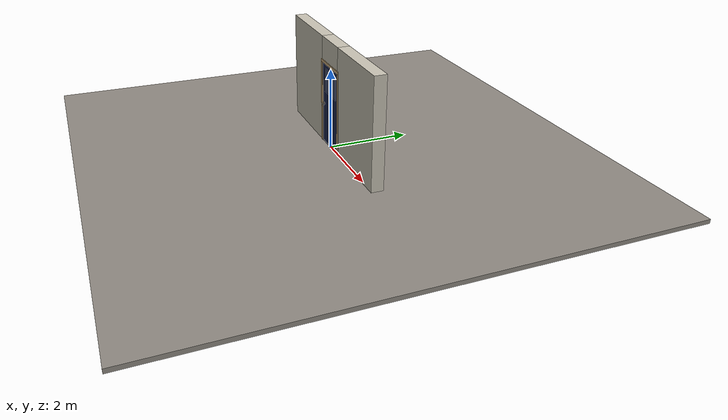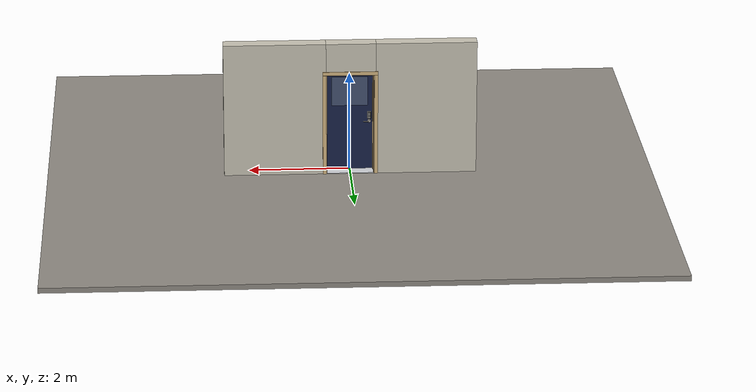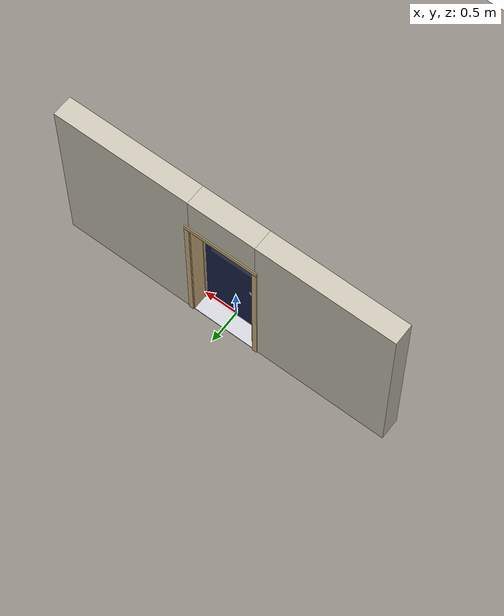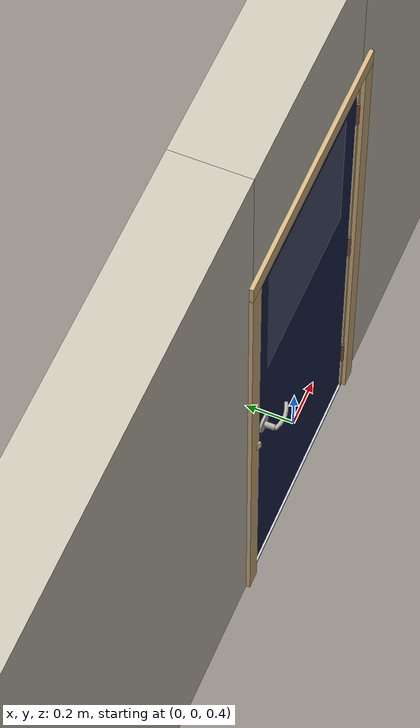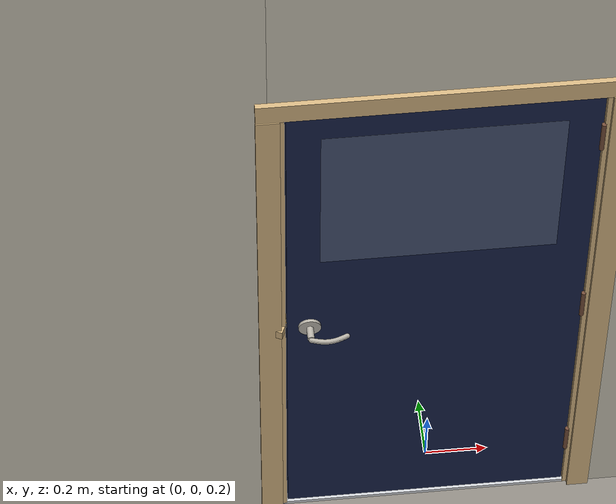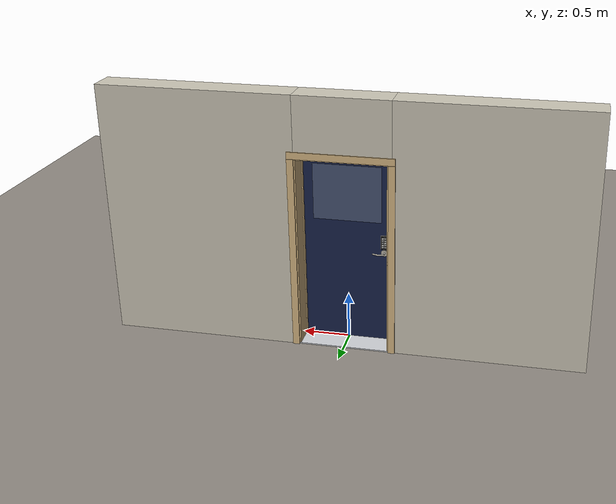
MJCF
<?xml version="1.0" ?>
<mujoco model="db0878_swing_single_full">
  <compiler angle="radian" meshdir="../../hardware" texturedir="../../textures" autolimits="true" inertiafromgeom="false"/>
  <option timestep="0.002" integrator="implicitfast" cone="elliptic" impratio="10" noslip_iterations="3">
    <flag multiccd="enable"/>
  </option>
  <size memory="16M"/>
  <default>
    <geom condim="4" solref="0.005 1" solimp="0.95 0.99 0.001"/>
    <joint solreflimit="0.005 1" solimplimit="0.95 0.99 0.001"/>
    <tendon solreflimit="0.005 1"/>
    <equality solref="0.002 1"/>
  </default>
  <visual>
    <headlight ambient="0.4 0.4 0.4" diffuse="0.7 0.7 0.7" specular="0.2 0.2 0.2"/>
    <quality shadowsize="4096"/>
    <map znear="0.01" zfar="60"/>
  </visual>
  <asset>
    <mesh name="hinge_e22b26c0c1" file="hinge_e22b26c0c1.obj"/>
    <mesh name="hinge_jamb_e1d088f8dc" file="hinge_jamb_e1d088f8dc.obj"/>
    <mesh name="keypad_body_3b2d063948" file="keypad_body_3b2d063948.obj"/>
    <mesh name="lever_a61139b160" file="lever_a61139b160.obj"/>
    <material name="mat_floor" rgba="0.55 0.53 0.5 1" specular="0.2" shininess="0.15" reflectance="0"/>
    <material name="mat_wall" rgba="0.78 0.76 0.7 1" specular="0.2" shininess="0.1" reflectance="0"/>
    <material name="mat_leaf" rgba="0.09 0.13 0.28 1" specular="0.2" shininess="0.62" reflectance="0"/>
    <material name="mat_glass" rgba="0.85 0.92 0.95 0.25" specular="0.2" shininess="0.95" reflectance="0.1"/>
    <material name="mat_hinge" rgba="0.45 0.3 0.22 1" specular="0.5" shininess="0.1" reflectance="0.2"/>
    <material name="mat_op_nickel_satin" rgba="0.72 0.7 0.66 1" specular="0.8" shininess="0.65" reflectance="0.4"/>
    <material name="mat_trim" rgba="0.85 0.66 0.3 1" specular="0.8" shininess="0.75" reflectance="0.4"/>
    <material name="mat_keypad" rgba="0.05 0.05 0.05 1" specular="0.38" shininess="0.3" reflectance="0.12"/>
    <material name="mat_key" rgba="0.85 0.85 0.82 1" specular="0.2" shininess="0.5" reflectance="0"/>
    <material name="mat_bolt" rgba="0.85 0.66 0.3 1" specular="0.8" shininess="0.75" reflectance="0.4"/>
    <material name="mat_frame" rgba="0.82 0.7 0.5 1" specular="0.2" shininess="0.45" reflectance="0"/>
    <material name="mat_seal" rgba="0.1 0.1 0.1 1" specular="0.2" shininess="0.1" reflectance="0"/>
    <material name="mat_threshold" rgba="0.8 0.81 0.83 1" specular="0.8" shininess="0.6" reflectance="0.4"/>
    <material name="mat_drip" rgba="0.8 0.81 0.83 1" specular="0.8" shininess="0.6" reflectance="0.4"/>
    <texture name="skybox" type="skybox" builtin="gradient" rgb1="0.6 0.7 0.85" rgb2="0.9 0.92 0.95" width="256" height="256"/>
  </asset>
  <worldbody>
    <light name="sun" pos="1.5 -2.5 4" dir="-0.3 0.5 -0.8" directional="true" diffuse="0.8 0.8 0.8" specular="0.3 0.3 0.3" castshadow="true"/>
    <light name="fill" pos="-1.5 2.5 3" dir="0.3 -0.5 -0.7" directional="true" diffuse="0.35 0.35 0.4" castshadow="false"/>
    <camera name="robot_view" pos="0 -2.421187 1.734312" xyaxes="1 0 0 0 0.26963 0.962964" fovy="52"/>
    <camera name="far_view" pos="0 2.663187 1.734312" xyaxes="-1 0 0 0 -0.26963 0.962964" fovy="52"/>
    <camera name="iso" pos="-1.932062 -2.014438 2.141063" xyaxes="0.741536 -0.670913 0 0.242917 0.268487 0.932151" fovy="46"/>
    <camera name="detail_handle" pos="-0.1169 -0.877 1.296" xyaxes="0.97561 0.219512 0 -0.070934 0.315262 0.94635" fovy="38"/>
    <geom name="floor" type="box" size="6 6 0.05" pos="0 0 -0.05" material="mat_floor" group="0" contype="1" conaffinity="1" friction="0.8 0.005 0.0001" density="2400"/>
    <geom name="wall_left" type="box" size="0.99525 0.15 1.35" pos="-1.50475 0.121 1.35" material="mat_wall" group="0" contype="1" conaffinity="1" friction="0.6 0.005 0.0001" density="800"/>
    <geom name="wall_right" type="box" size="1.01025 0.15 1.35" pos="1.48975 0.121 1.35" material="mat_wall" group="0" contype="1" conaffinity="1" friction="0.6 0.005 0.0001" density="800"/>
    <geom name="wall_header" type="box" size="0.4945 0.15 0.303" pos="-0.015 0.121 2.397" material="mat_wall" group="0" contype="1" conaffinity="1" friction="0.6 0.005 0.0001" density="800"/>
    <geom name="hinge_0_jamb" type="mesh" mesh="hinge_jamb_e1d088f8dc" pos="0.4575 -0.029 0.267" quat="0 0 1 0" material="mat_hinge" group="1" contype="0" conaffinity="0" density="7850"/>
    <geom name="hinge_1_jamb" type="mesh" mesh="hinge_jamb_e1d088f8dc" pos="0.4575 -0.029 1.029" quat="0 0 1 0" material="mat_hinge" group="1" contype="0" conaffinity="0" density="7850"/>
    <geom name="hinge_2_jamb" type="mesh" mesh="hinge_jamb_e1d088f8dc" pos="0.4575 -0.029 1.861" quat="0 0 1 0" material="mat_hinge" group="1" contype="0" conaffinity="0" density="7850"/>
    <geom name="jamb_hinge" type="box" size="0.0095 0.15 1.0225" pos="0.47 0.121 1.0225" material="mat_frame" group="0" contype="1" conaffinity="1" friction="0.6 0.005 0.0001" density="400"/>
    <geom name="strike_1016_wall_n" type="box" size="0.0245 0.131575 0.0167" pos="-0.485 0.139425 1.016" material="mat_frame" group="0" contype="1" conaffinity="1" friction="0.6 0.005 0.0001" density="400"/>
    <geom name="strike_1016_wall_p" type="box" size="0.0245 0.008 0.0167" pos="-0.485 -0.01585 1.016" material="mat_frame" group="0" contype="1" conaffinity="1" friction="0.6 0.005 0.0001" density="400"/>
    <geom name="strike_1016_ramp" type="box" size="0.0245 0.01649 0.0167" pos="-0.489636 -0.028673 1.016" quat="0.977148 0 0 -0.212558" material="mat_frame" group="0" contype="1" conaffinity="1" friction="0.12 0.005 0.0001" density="400"/>
    <geom name="strike_1016_back" type="box" size="0.01615 0.00785 0.0167" pos="-0.49335 0 1.016" material="mat_frame" group="0" contype="1" conaffinity="1" friction="0.6 0.005 0.0001" density="400"/>
    <geom name="jamb_strike_0" type="box" size="0.0245 0.15 0.49965" pos="-0.485 0.121 0.49965" material="mat_frame" group="0" contype="1" conaffinity="1" friction="0.6 0.005 0.0001" density="400"/>
    <geom name="jamb_strike_1" type="box" size="0.0245 0.15 0.50615" pos="-0.485 0.121 1.53885" material="mat_frame" group="0" contype="1" conaffinity="1" friction="0.6 0.005 0.0001" density="400"/>
    <geom name="jamb_head" type="box" size="0.4945 0.15 0.0095" pos="-0.015 0.121 2.0545" material="mat_frame" group="0" contype="1" conaffinity="1" friction="0.6 0.005 0.0001" density="400"/>
    <geom name="head_stud" type="box" size="0.4945 0.15 0.015" pos="-0.015 0.121 2.079" material="mat_wall" group="0" contype="1" conaffinity="1" friction="0.6 0.005 0.0001" density="500"/>
    <geom name="stop_hinge" type="box" size="0.0055 0.016 1.0225" pos="0.455 0.0385 1.0225" material="mat_frame" group="0" contype="1" conaffinity="1" friction="0.6 0.005 0.0001" density="400"/>
    <geom name="stop_strike" type="box" size="0.0055 0.016 1.0225" pos="-0.455 0.0385 1.0225" material="mat_frame" group="0" contype="1" conaffinity="1" friction="0.6 0.005 0.0001" density="400"/>
    <geom name="stop_head" type="box" size="0.4605 0.016 0.0055" pos="0 0.0385 2.0395" material="mat_frame" group="0" contype="1" conaffinity="1" friction="0.6 0.005 0.0001" density="400"/>
    <geom name="seal_hinge" type="box" size="0.004 0.0015 1.0225" pos="0.4575 0.0235 1.0225" material="mat_seal" group="1" contype="0" conaffinity="0" density="1100"/>
    <geom name="seal_strike" type="box" size="0.004 0.0015 1.0225" pos="-0.4575 0.0235 1.0225" material="mat_seal" group="1" contype="0" conaffinity="0" density="1100"/>
    <geom name="seal_head" type="box" size="0.4405 0.0015 0.008" pos="0 0.0235 2.033" material="mat_seal" group="1" contype="0" conaffinity="0" density="1100"/>
    <geom name="casing_l_n" type="box" size="0.035 0.008 1.032" pos="-0.5095 -0.037 1.0225" material="mat_frame" group="2" contype="0" conaffinity="0" density="400"/>
    <geom name="casing_r_n" type="box" size="0.035 0.008 1.032" pos="0.5095 -0.037 1.0225" material="mat_frame" group="2" contype="0" conaffinity="0" density="400"/>
    <geom name="casing_h_n" type="box" size="0.5445 0.008 0.035" pos="0 -0.037 2.094" material="mat_frame" group="2" contype="0" conaffinity="0" density="400"/>
    <geom name="casing_l_p" type="box" size="0.035 0.008 1.032" pos="-0.5095 0.279 1.0225" material="mat_frame" group="2" contype="0" conaffinity="0" density="400"/>
    <geom name="casing_r_p" type="box" size="0.035 0.008 1.032" pos="0.5095 0.279 1.0225" material="mat_frame" group="2" contype="0" conaffinity="0" density="400"/>
    <geom name="casing_h_p" type="box" size="0.5445 0.008 0.035" pos="0 0.279 2.094" material="mat_frame" group="2" contype="0" conaffinity="0" density="400"/>
    <geom name="threshold" type="box" size="0.4795 0.15 0.0065" pos="0 0.121 0.0065" material="mat_threshold" group="0" contype="1" conaffinity="1" friction="0.5 0.005 0.0001" density="2700"/>
    <geom name="weather_drip_cap" type="box" size="0.5105 0.03 0.008" pos="0 0.03 2.09" material="mat_drip" group="2" contype="0" conaffinity="0" density="2700"/>
    <geom name="weather_drip_cap_bracket" type="box" size="0.15315 0.015 0.005" pos="0 -0.0145 2.09" material="mat_drip" group="2" contype="0" conaffinity="0" density="7850"/>
    <site name="approach_point" pos="0 -1.5 0" quat="1 0 0 0" size="0.05" rgba="0.2 0.9 0.2 0.5" group="4"/>
    <site name="goal_point" pos="0 1.5 0" quat="1 0 0 0" size="0.05" rgba="0.2 0.9 0.2 0.5" group="4"/>
    <site name="door_plane_center" pos="0 0 1.0225" quat="1 0 0 0" size="0.02" rgba="0.2 0.9 0.2 0.5" group="4"/>
    <body name="leaf" pos="0.4605 0 0">
      <inertial pos="-0.452325 0.000023 1.032483" mass="27.888101" quat="0.501313 0.497759 -0.502156 0.498758" diaginertia="2.12516692 9.41904057 11.53366141"/>
      <joint name="leaf_hinge" type="hinge" axis="0 0 1" pos="-0.003 -0.029 0" limited="true" range="0 1.570796" solreflimit="0.02 1" damping="0.30611" frictionloss="2.621469" armature="0.02"/>
      <geom name="leaf_slab" type="box" size="0.457 0.022 1.012" pos="-0.46 0 1.029" material="mat_leaf" group="0" contype="1" conaffinity="1" friction="0.4 0.005 0.0001" density="1"/>
      <geom name="leaf_glass_0" type="box" size="0.35646 0.0228 0.297528" pos="-0.46 0 1.642272" material="mat_glass" group="1" contype="0" conaffinity="0" density="1"/>
      <geom name="hinge_0" type="mesh" mesh="hinge_e22b26c0c1" pos="-0.003 -0.029 0.267" quat="0 0 1 0" material="mat_hinge" group="1" contype="0" conaffinity="0" density="7850"/>
      <geom name="hinge_1" type="mesh" mesh="hinge_e22b26c0c1" pos="-0.003 -0.029 1.029" quat="0 0 1 0" material="mat_hinge" group="1" contype="0" conaffinity="0" density="7850"/>
      <geom name="hinge_2" type="mesh" mesh="hinge_e22b26c0c1" pos="-0.003 -0.029 1.861" quat="0 0 1 0" material="mat_hinge" group="1" contype="0" conaffinity="0" density="7850"/>
      <geom name="leaf_keypad_body" type="mesh" mesh="keypad_body_3b2d063948" pos="-0.847 0.022 1.136" quat="0 0 0.707107 0.707107" material="mat_keypad" group="0" contype="1" conaffinity="1" friction="0.6 0.005 0.0001" density="2000"/>
      <geom name="leaf_latch_bolt_faceplate" type="box" size="0.0006 0.01235 0.0267" pos="-0.9164 0 1.016" material="mat_bolt" group="1" contype="0" conaffinity="0" density="8500"/>
      <site name="leaf_edge_mid" pos="-0.917 0 1.012" quat="1 0 0 0" size="0.02" rgba="0.2 0.9 0.2 0.5" group="4"/>
      <body name="leaf_handle" pos="-0.847 0 1.016">
        <inertial pos="0.022132 -0.050687 0" mass="0.463269" quat="0.312008 0 0 0.950079" diaginertia="0.000227859 0.000847742 0.000992066"/>
        <joint name="leaf_handle_hinge" type="hinge" axis="0 1 0" limited="true" range="0 0.87" damping="0.208392" frictionloss="0.052" stiffness="1" springref="-0.35" armature="0.01"/>
        <geom name="leaf_handle_spindle" type="cylinder" size="0.006 0.03" pos="0 0 0" quat="0.707107 -0.707107 0 0" material="mat_op_nickel_satin" group="1" contype="0" conaffinity="0" density="7850"/>
        <geom name="leaf_handle_lever_n" type="mesh" mesh="lever_a61139b160" pos="0 -0.022 0" quat="0 0 -0.707107 0.707107" material="mat_op_nickel_satin" group="1" contype="0" conaffinity="0" density="3000"/>
        <geom name="leaf_handle_lever_col_n" type="capsule" size="0.008 0.048" pos="0.056 -0.077 0" quat="0.707107 0 0.707107 0" material="mat_op_nickel_satin" group="3" contype="1" conaffinity="1" rgba="0.8 0.3 0.3 0.25" friction="0.7 0.01 0.0001" density="3000"/>
        <geom name="leaf_handle_hub_col_n" type="cylinder" size="0.012 0.022" pos="0 -0.052 0" quat="0.707107 -0.707107 0 0" material="mat_op_nickel_satin" group="3" contype="1" conaffinity="1" rgba="0.8 0.3 0.3 0.25" friction="0.6 0.005 0.0001" density="3000"/>
        <site name="leaf_handle_grip_n" pos="0.0896 -0.077 0" quat="1 0 0 0" size="0.012" rgba="0.2 0.9 0.2 0.5" group="4"/>
      </body>
      <body name="leaf_keypad_key_1" pos="-0.834 0.042 1.184">
        <inertial pos="0 0.0015 0" mass="0.001008" quat="0 0 0.707107 0.707107" diaginertia="0.000000017 0.000000034 0.00000005"/>
        <joint name="leaf_keypad_key_1_slide" type="slide" axis="0 -1 0" limited="true" range="0 0.0015" damping="14" frictionloss="0.05" stiffness="1000" springref="-0.0015" armature="0.1"/>
        <geom name="leaf_keypad_key_1_geom" type="box" size="0.01 0.0015 0.007" pos="0 0.0015 0" material="mat_key" group="0" contype="1" conaffinity="1" friction="0.6 0.005 0.0001" density="1200"/>
        <site name="leaf_keypad_key_1_press" pos="0 0.005 0" quat="1 0 0 0" size="0.008" rgba="0.2 0.9 0.2 0.5" group="4"/>
      </body>
      <body name="leaf_keypad_key_2" pos="-0.86 0.042 1.184">
        <inertial pos="0 0.0015 0" mass="0.001008" quat="0 0 0.707107 0.707107" diaginertia="0.000000017 0.000000034 0.00000005"/>
        <joint name="leaf_keypad_key_2_slide" type="slide" axis="0 -1 0" limited="true" range="0 0.0015" damping="14" frictionloss="0.05" stiffness="1000" springref="-0.0015" armature="0.1"/>
        <geom name="leaf_keypad_key_2_geom" type="box" size="0.01 0.0015 0.007" pos="0 0.0015 0" material="mat_key" group="0" contype="1" conaffinity="1" friction="0.6 0.005 0.0001" density="1200"/>
        <site name="leaf_keypad_key_2_press" pos="0 0.005 0" quat="1 0 0 0" size="0.008" rgba="0.2 0.9 0.2 0.5" group="4"/>
      </body>
      <body name="leaf_keypad_key_3" pos="-0.834 0.042 1.16">
        <inertial pos="0 0.0015 0" mass="0.001008" quat="0 0 0.707107 0.707107" diaginertia="0.000000017 0.000000034 0.00000005"/>
        <joint name="leaf_keypad_key_3_slide" type="slide" axis="0 -1 0" limited="true" range="0 0.0015" damping="14" frictionloss="0.05" stiffness="1000" springref="-0.0015" armature="0.1"/>
        <geom name="leaf_keypad_key_3_geom" type="box" size="0.01 0.0015 0.007" pos="0 0.0015 0" material="mat_key" group="0" contype="1" conaffinity="1" friction="0.6 0.005 0.0001" density="1200"/>
        <site name="leaf_keypad_key_3_press" pos="0 0.005 0" quat="1 0 0 0" size="0.008" rgba="0.2 0.9 0.2 0.5" group="4"/>
      </body>
      <body name="leaf_keypad_key_4" pos="-0.86 0.042 1.16">
        <inertial pos="0 0.0015 0" mass="0.001008" quat="0 0 0.707107 0.707107" diaginertia="0.000000017 0.000000034 0.00000005"/>
        <joint name="leaf_keypad_key_4_slide" type="slide" axis="0 -1 0" limited="true" range="0 0.0015" damping="14" frictionloss="0.05" stiffness="1000" springref="-0.0015" armature="0.1"/>
        <geom name="leaf_keypad_key_4_geom" type="box" size="0.01 0.0015 0.007" pos="0 0.0015 0" material="mat_key" group="0" contype="1" conaffinity="1" friction="0.6 0.005 0.0001" density="1200"/>
        <site name="leaf_keypad_key_4_press" pos="0 0.005 0" quat="1 0 0 0" size="0.008" rgba="0.2 0.9 0.2 0.5" group="4"/>
      </body>
      <body name="leaf_keypad_key_5" pos="-0.834 0.042 1.136">
        <inertial pos="0 0.0015 0" mass="0.001008" quat="0 0 0.707107 0.707107" diaginertia="0.000000017 0.000000034 0.00000005"/>
        <joint name="leaf_keypad_key_5_slide" type="slide" axis="0 -1 0" limited="true" range="0 0.0015" damping="14" frictionloss="0.05" stiffness="1000" springref="-0.0015" armature="0.1"/>
        <geom name="leaf_keypad_key_5_geom" type="box" size="0.01 0.0015 0.007" pos="0 0.0015 0" material="mat_key" group="0" contype="1" conaffinity="1" friction="0.6 0.005 0.0001" density="1200"/>
        <site name="leaf_keypad_key_5_press" pos="0 0.005 0" quat="1 0 0 0" size="0.008" rgba="0.2 0.9 0.2 0.5" group="4"/>
      </body>
      <body name="leaf_keypad_key_6" pos="-0.86 0.042 1.136">
        <inertial pos="0 0.0015 0" mass="0.001008" quat="0 0 0.707107 0.707107" diaginertia="0.000000017 0.000000034 0.00000005"/>
        <joint name="leaf_keypad_key_6_slide" type="slide" axis="0 -1 0" limited="true" range="0 0.0015" damping="14" frictionloss="0.05" stiffness="1000" springref="-0.0015" armature="0.1"/>
        <geom name="leaf_keypad_key_6_geom" type="box" size="0.01 0.0015 0.007" pos="0 0.0015 0" material="mat_key" group="0" contype="1" conaffinity="1" friction="0.6 0.005 0.0001" density="1200"/>
        <site name="leaf_keypad_key_6_press" pos="0 0.005 0" quat="1 0 0 0" size="0.008" rgba="0.2 0.9 0.2 0.5" group="4"/>
      </body>
      <body name="leaf_keypad_key_7" pos="-0.834 0.042 1.112">
        <inertial pos="0 0.0015 0" mass="0.001008" quat="0 0 0.707107 0.707107" diaginertia="0.000000017 0.000000034 0.00000005"/>
        <joint name="leaf_keypad_key_7_slide" type="slide" axis="0 -1 0" limited="true" range="0 0.0015" damping="14" frictionloss="0.05" stiffness="1000" springref="-0.0015" armature="0.1"/>
        <geom name="leaf_keypad_key_7_geom" type="box" size="0.01 0.0015 0.007" pos="0 0.0015 0" material="mat_key" group="0" contype="1" conaffinity="1" friction="0.6 0.005 0.0001" density="1200"/>
        <site name="leaf_keypad_key_7_press" pos="0 0.005 0" quat="1 0 0 0" size="0.008" rgba="0.2 0.9 0.2 0.5" group="4"/>
      </body>
      <body name="leaf_keypad_key_8" pos="-0.86 0.042 1.112">
        <inertial pos="0 0.0015 0" mass="0.001008" quat="0 0 0.707107 0.707107" diaginertia="0.000000017 0.000000034 0.00000005"/>
        <joint name="leaf_keypad_key_8_slide" type="slide" axis="0 -1 0" limited="true" range="0 0.0015" damping="14" frictionloss="0.05" stiffness="1000" springref="-0.0015" armature="0.1"/>
        <geom name="leaf_keypad_key_8_geom" type="box" size="0.01 0.0015 0.007" pos="0 0.0015 0" material="mat_key" group="0" contype="1" conaffinity="1" friction="0.6 0.005 0.0001" density="1200"/>
        <site name="leaf_keypad_key_8_press" pos="0 0.005 0" quat="1 0 0 0" size="0.008" rgba="0.2 0.9 0.2 0.5" group="4"/>
      </body>
      <body name="leaf_keypad_key_9" pos="-0.834 0.042 1.088">
        <inertial pos="0 0.0015 0" mass="0.001008" quat="0 0 0.707107 0.707107" diaginertia="0.000000017 0.000000034 0.00000005"/>
        <joint name="leaf_keypad_key_9_slide" type="slide" axis="0 -1 0" limited="true" range="0 0.0015" damping="14" frictionloss="0.05" stiffness="1000" springref="-0.0015" armature="0.1"/>
        <geom name="leaf_keypad_key_9_geom" type="box" size="0.01 0.0015 0.007" pos="0 0.0015 0" material="mat_key" group="0" contype="1" conaffinity="1" friction="0.6 0.005 0.0001" density="1200"/>
        <site name="leaf_keypad_key_9_press" pos="0 0.005 0" quat="1 0 0 0" size="0.008" rgba="0.2 0.9 0.2 0.5" group="4"/>
      </body>
      <body name="leaf_keypad_key_0" pos="-0.86 0.042 1.088">
        <inertial pos="0 0.0015 0" mass="0.001008" quat="0 0 0.707107 0.707107" diaginertia="0.000000017 0.000000034 0.00000005"/>
        <joint name="leaf_keypad_key_0_slide" type="slide" axis="0 -1 0" limited="true" range="0 0.0015" damping="14" frictionloss="0.05" stiffness="1000" springref="-0.0015" armature="0.1"/>
        <geom name="leaf_keypad_key_0_geom" type="box" size="0.01 0.0015 0.007" pos="0 0.0015 0" material="mat_key" group="0" contype="1" conaffinity="1" friction="0.6 0.005 0.0001" density="1200"/>
        <site name="leaf_keypad_key_0_press" pos="0 0.005 0" quat="1 0 0 0" size="0.008" rgba="0.2 0.9 0.2 0.5" group="4"/>
      </body>
      <body name="leaf_handle_out" pos="-0.847 0 1.016">
        <inertial pos="0.025007 0.057273 0" mass="0.41" quat="-0.235955 0 0 0.971764" diaginertia="0.000156759 0.000717302 0.000791484"/>
        <joint name="leaf_handle_out_hinge" type="hinge" axis="0 1 0" limited="true" range="0 0.87" damping="0.208382" frictionloss="0.052" stiffness="1" springref="-0.35" armature="0.01"/>
        <geom name="leaf_handle_out_lever_p" type="mesh" mesh="lever_a61139b160" pos="0 0.022 0" quat="0 0 0.707107 0.707107" material="mat_op_nickel_satin" group="1" contype="0" conaffinity="0" density="3000"/>
        <geom name="leaf_handle_out_lever_col_p" type="capsule" size="0.008 0.048" pos="0.056 0.077 0" quat="0.707107 0 0.707107 0" material="mat_op_nickel_satin" group="3" contype="1" conaffinity="1" rgba="0.8 0.3 0.3 0.25" friction="0.7 0.01 0.0001" density="3000"/>
        <geom name="leaf_handle_out_hub_col_p" type="cylinder" size="0.012 0.022" pos="0 0.052 0" quat="0.707107 -0.707107 0 0" material="mat_op_nickel_satin" group="3" contype="1" conaffinity="1" rgba="0.8 0.3 0.3 0.25" friction="0.6 0.005 0.0001" density="3000"/>
        <site name="leaf_handle_out_grip_p" pos="0.0896 0.077 0" quat="1 0 0 0" size="0.012" rgba="0.2 0.9 0.2 0.5" group="4"/>
      </body>
      <body name="leaf_latch_bolt" pos="-0.917 0 1.016">
        <inertial pos="0.00865 0 0" mass="0.041419" quat="0.92388 0.382683 0 0" diaginertia="0.000000798 0.000005598 0.000005598"/>
        <joint name="leaf_latch_bolt_slide" type="slide" axis="1 0 0" limited="true" range="0 0.0127" damping="2" frictionloss="0.3" stiffness="300" springref="-0.008333" armature="0.1"/>
        <geom name="leaf_latch_bolt_capsule" type="capsule" size="0.00635 0.015" pos="0.00865 0 0" quat="0.707107 0 -0.707107 0" material="mat_bolt" group="0" contype="1" conaffinity="1" friction="0.2 0.005 0.0001" density="8500"/>
      </body>
    </body>
  </worldbody>
  <tendon>
    <fixed name="leaf_latch_bolt_coupling" limited="true" range="0 10">
      <joint joint="leaf_latch_bolt_slide" coef="1"/>
      <joint joint="leaf_handle_hinge" coef="-0.015679"/>
      <joint joint="leaf_handle_out_hinge" coef="-0.015679"/>
    </fixed>
  </tendon>
  <sensor>
    <jointpos name="leaf_hinge_pos" joint="leaf_hinge"/>
    <jointvel name="leaf_hinge_vel" joint="leaf_hinge"/>
    <jointpos name="leaf_handle_hinge_pos" joint="leaf_handle_hinge"/>
    <jointvel name="leaf_handle_hinge_vel" joint="leaf_handle_hinge"/>
    <jointpos name="leaf_keypad_key_1_slide_pos" joint="leaf_keypad_key_1_slide"/>
    <jointvel name="leaf_keypad_key_1_slide_vel" joint="leaf_keypad_key_1_slide"/>
    <jointpos name="leaf_keypad_key_2_slide_pos" joint="leaf_keypad_key_2_slide"/>
    <jointvel name="leaf_keypad_key_2_slide_vel" joint="leaf_keypad_key_2_slide"/>
    <jointpos name="leaf_keypad_key_3_slide_pos" joint="leaf_keypad_key_3_slide"/>
    <jointvel name="leaf_keypad_key_3_slide_vel" joint="leaf_keypad_key_3_slide"/>
    <jointpos name="leaf_keypad_key_4_slide_pos" joint="leaf_keypad_key_4_slide"/>
    <jointvel name="leaf_keypad_key_4_slide_vel" joint="leaf_keypad_key_4_slide"/>
    <jointpos name="leaf_keypad_key_5_slide_pos" joint="leaf_keypad_key_5_slide"/>
    <jointvel name="leaf_keypad_key_5_slide_vel" joint="leaf_keypad_key_5_slide"/>
    <jointpos name="leaf_keypad_key_6_slide_pos" joint="leaf_keypad_key_6_slide"/>
    <jointvel name="leaf_keypad_key_6_slide_vel" joint="leaf_keypad_key_6_slide"/>
    <jointpos name="leaf_keypad_key_7_slide_pos" joint="leaf_keypad_key_7_slide"/>
    <jointvel name="leaf_keypad_key_7_slide_vel" joint="leaf_keypad_key_7_slide"/>
    <jointpos name="leaf_keypad_key_8_slide_pos" joint="leaf_keypad_key_8_slide"/>
    <jointvel name="leaf_keypad_key_8_slide_vel" joint="leaf_keypad_key_8_slide"/>
    <jointpos name="leaf_keypad_key_9_slide_pos" joint="leaf_keypad_key_9_slide"/>
    <jointvel name="leaf_keypad_key_9_slide_vel" joint="leaf_keypad_key_9_slide"/>
    <jointpos name="leaf_keypad_key_0_slide_pos" joint="leaf_keypad_key_0_slide"/>
    <jointvel name="leaf_keypad_key_0_slide_vel" joint="leaf_keypad_key_0_slide"/>
    <jointpos name="leaf_handle_out_hinge_pos" joint="leaf_handle_out_hinge"/>
    <jointvel name="leaf_handle_out_hinge_vel" joint="leaf_handle_out_hinge"/>
    <jointpos name="leaf_latch_bolt_slide_pos" joint="leaf_latch_bolt_slide"/>
    <jointvel name="leaf_latch_bolt_slide_vel" joint="leaf_latch_bolt_slide"/>
  </sensor>
</mujoco>
